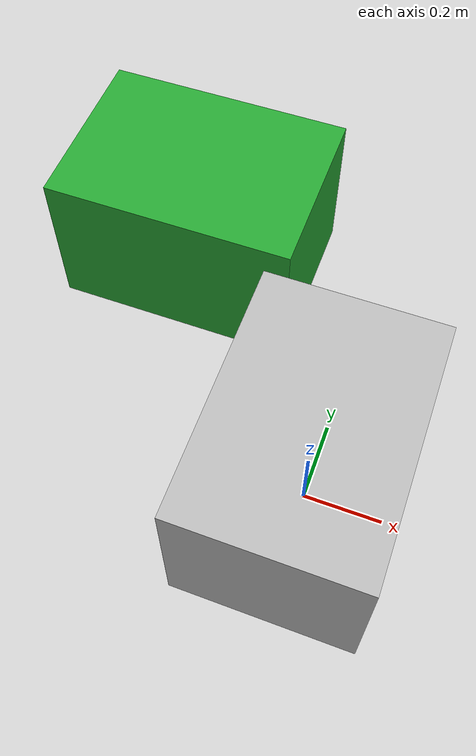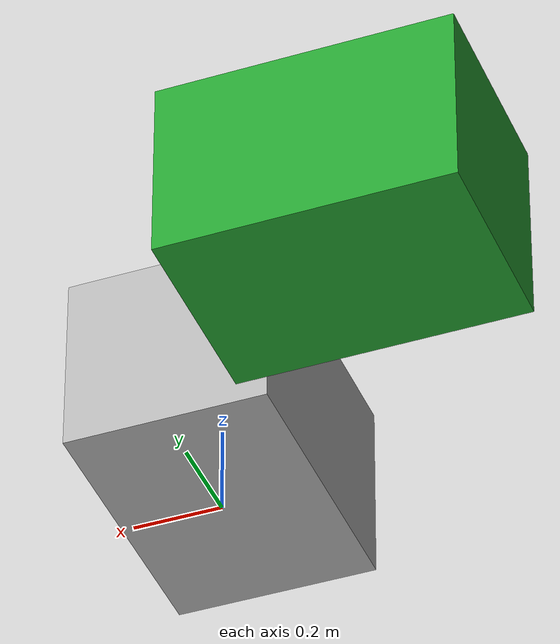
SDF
<?xml version='1.0'?>
<sdf version='1.6'>
  <model name='table'>
    <link name='link'>
      <pose>0 0 0.2099115 0 -0 0</pose>
      <inertial>
        <pose>0 0 0 0 -0 0</pose>
        <mass>10</mass>
        <inertia>
          <ixx>0.166667</ixx>
          <ixy>0</ixy>
          <ixz>0</ixz>
          <iyy>0.166667</iyy>
          <iyz>0</iyz>
          <izz>0.166667</izz>
        </inertia>
      </inertial>
      <self_collide>0</self_collide>
      <enable_wind>0</enable_wind>
      <kinematic>0</kinematic>
      <visual name='visual'>
        <pose>0 0 0 0 -0 0</pose>
        <geometry>
          <box>
            <size>0.453157 0.642049 0.419823</size>
          </box>
        </geometry>
        <material>
          <script>
            <ambient>0.1 0.1 0.1 1</ambient>
            <diffuse>0.1 0.1 0.2 1</diffuse>
            <specular>0 0 0 0</specular>
            <emissive>0 0 0 1</emissive>
          </script>
          <shader type='pixel'/>
        </material>
        <lighting>true</lighting>
        <pose>0 0 0 0 -0 0</pose>
        <transparency>0</transparency>
        <cast_shadows>false</cast_shadows>
      </visual>
      <collision name='collision'>
        <laser_retro>0</laser_retro>
        <max_contacts>10</max_contacts>
        <pose>0 0 0 0 -0 0</pose>
        <geometry>
          <box>
            <size>0.453157 0.642049 0.419823</size>
          </box>
        </geometry>
        <surface>
          <friction>
            <ode>
              <mu>1</mu>
              <mu2>1</mu2>
              <fdir1>0 0 0</fdir1>
              <slip1>0</slip1>
              <slip2>0</slip2>
            </ode>
            <torsional>
              <coefficient>1</coefficient>
              <patch_radius>0</patch_radius>
              <surface_radius>0</surface_radius>
              <use_patch_radius>1</use_patch_radius>
              <ode>
                <slip>0</slip>
              </ode>
            </torsional>
          </friction>
          <bounce>
            <restitution_coefficient>0</restitution_coefficient>
            <threshold>1e+06</threshold>
          </bounce>
          <contact>
            <collide_without_contact>0</collide_without_contact>
            <collide_without_contact_bitmask>1</collide_without_contact_bitmask>
            <collide_bitmask>1</collide_bitmask>
            <ode>
              <soft_cfm>0</soft_cfm>
              <soft_erp>0.2</soft_erp>
              <kp>1e+13</kp>
              <kd>1</kd>
              <max_vel>0.01</max_vel>
              <min_depth>0</min_depth>
            </ode>
            <bullet>
              <split_impulse>1</split_impulse>
              <split_impulse_penetration_threshold>-0.01</split_impulse_penetration_threshold>
              <soft_cfm>0</soft_cfm>
              <soft_erp>0.2</soft_erp>
              <kp>1e+13</kp>
              <kd>1</kd>
            </bullet>
          </contact>
        </surface>
      </collision>
    </link>
    <static>1</static>
    <allow_auto_disable>1</allow_auto_disable>

    <link name='link2'>
      <pose>-0.5 0.6 0.2099115 0 -0 1.57</pose>
      <inertial>
        <pose>0 0 0 0 -0 0</pose>
        <mass>10</mass>
        <inertia>
          <ixx>0.166667</ixx>
          <ixy>0</ixy>
          <ixz>0</ixz>
          <iyy>0.166667</iyy>
          <iyz>0</iyz>
          <izz>0.166667</izz>
        </inertia>
      </inertial>
      <self_collide>0</self_collide>
      <enable_wind>0</enable_wind>
      <kinematic>0</kinematic>
      <visual name='visual'>
        <pose>0 0 0 0 -0 0</pose>
        <geometry>
          <box>
            <size>0.453157 0.642049 0.419823</size>
          </box>
        </geometry>
        <material>
          <script>
            <name>Gazebo/Green</name>
            <uri>file://media/materials/scripts/gazebo.material</uri>
          </script>
          <shader type='pixel'/>
        </material>
        <lighting>true</lighting>
        <pose>0 0 0 0 -0 0</pose>
        <transparency>0</transparency>
        <cast_shadows>false</cast_shadows>
      </visual>
      <collision name='collision'>
        <laser_retro>0</laser_retro>
        <max_contacts>10</max_contacts>
        <pose>0 0 0 0 -0 0</pose>
        <geometry>
          <box>
            <size>0.453157 0.642049 0.419823</size>
          </box>
        </geometry>
        <surface>
          <friction>
            <ode>
              <mu>1</mu>
              <mu2>1</mu2>
              <fdir1>0 0 0</fdir1>
              <slip1>0</slip1>
              <slip2>0</slip2>
            </ode>
            <torsional>
              <coefficient>1</coefficient>
              <patch_radius>0</patch_radius>
              <surface_radius>0</surface_radius>
              <use_patch_radius>1</use_patch_radius>
              <ode>
                <slip>0</slip>
              </ode>
            </torsional>
          </friction>
          <bounce>
            <restitution_coefficient>0</restitution_coefficient>
            <threshold>1e+06</threshold>
          </bounce>
          <contact>
            <collide_without_contact>0</collide_without_contact>
            <collide_without_contact_bitmask>1</collide_without_contact_bitmask>
            <collide_bitmask>1</collide_bitmask>
            <ode>
              <soft_cfm>0</soft_cfm>
              <soft_erp>0.2</soft_erp>
              <kp>1e+13</kp>
              <kd>1</kd>
              <max_vel>0.01</max_vel>
              <min_depth>0</min_depth>
            </ode>
            <bullet>
              <split_impulse>1</split_impulse>
              <split_impulse_penetration_threshold>-0.01</split_impulse_penetration_threshold>
              <soft_cfm>0</soft_cfm>
              <soft_erp>0.2</soft_erp>
              <kp>1e+13</kp>
              <kd>1</kd>
            </bullet>
          </contact>
        </surface>
      </collision>
    </link>
    <static>1</static>
    <allow_auto_disable>1</allow_auto_disable>
  </model>
</sdf>
